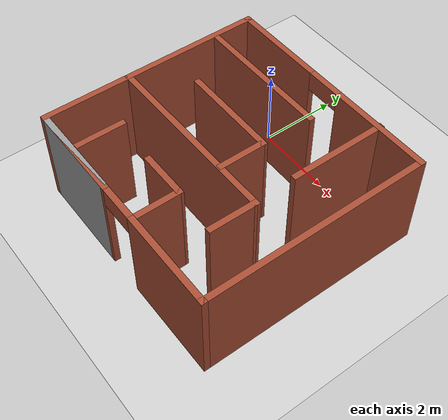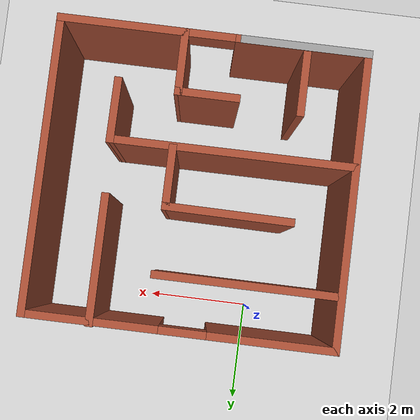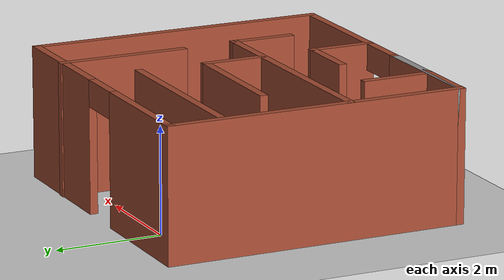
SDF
<sdf version="1.7">
 <world name="default">
  <light name="sun" type="directional">
   <pose>0 0 10 0 -0 0</pose>
   <diffuse>0.8 0.8 0.8 1</diffuse>
   <specular>0.2 0.2 0.2 1</specular>
   <attenuation>
    <range>1000</range>
    <constant>0.9</constant>
    <linear>0.01</linear>
    <quadratic>0.001</quadratic>
   </attenuation>
   <direction>-0.5 0.1 -0.9</direction>
   <spot><inner_angle>0</inner_angle><outer_angle>0</outer_angle><falloff>0</falloff></spot>
  </light>
  <model name="ground_plane">
   <static>1</static>
   <link name="link">
    <collision name="collision">
     <geometry><plane><normal>0 0 1</normal><size>100 100</size></plane></geometry>
     <surface><friction><ode><mu>100</mu><mu2>50</mu2></ode></friction></surface>
    </collision>
    <visual name="visual">
     <cast_shadows>0</cast_shadows>
     <geometry><plane><normal>0 0 1</normal><size>100 100</size></plane></geometry>
     <material>
      <script><uri>file://media/materials/scripts/gazebo.material</uri><name>Gazebo/Grey</name></script>
     </material>
    </visual>
   </link>
  </model>
  <gravity>0 0 -9.8</gravity>
  <magnetic_field>6e-06 2.3e-05 -4.2e-05</magnetic_field>
  <atmosphere type="adiabatic"/>
  <physics type="ode">
   <max_step_size>0.001</max_step_size>
   <real_time_factor>1</real_time_factor>
   <real_time_update_rate>1000</real_time_update_rate>
  </physics>
  <scene><ambient>0.4 0.4 0.4 1</ambient><background>0.7 0.7 0.7 1</background><shadows>1</shadows></scene>
  <audio><device>default</device></audio>
  <spherical_coordinates>
   <surface_model>EARTH_WGS84</surface_model>
   <latitude_deg>0</latitude_deg>
   <longitude_deg>0</longitude_deg>
   <elevation>0</elevation>
   <heading_deg>0</heading_deg>
  </spherical_coordinates>
  <model name="maze">
   <pose>1.3042 -2.2334 0 0 -0 0</pose>
   <link name="Wall_0">
    <collision name="Wall_0_Collision">
     <geometry><box><size>2.5 0.15 2.5</size></box></geometry>
     <pose>0 0 1.25 0 -0 0</pose>
    </collision>
    <visual name="Wall_0_Visual">
     <pose>0 0 1.25 0 -0 0</pose>
     <geometry><box><size>2.5 0.15 2.5</size></box></geometry>
     <material>
      <script><uri>file://media/materials/scripts/gazebo.material</uri><name>Gazebo/Grey</name></script>
      <ambient>1 1 1 1</ambient>
     </material>
     <meta><layer>0</layer></meta>
    </visual>
    <pose>-1.75 -2.81087 0 0 -0 3.14159</pose>
   </link>
   <link name="Wall_1">
    <collision name="Wall_1_Collision">
     <geometry><box><size>5.75 0.15 2.5</size></box></geometry>
     <pose>0 0 1.25 0 -0 0</pose>
    </collision>
    <visual name="Wall_1_Visual">
     <pose>0 0 1.25 0 -0 0</pose>
     <geometry><box><size>5.75 0.15 2.5</size></box></geometry>
     <material>
      <script><uri>file://media/materials/scripts/gazebo.material</uri><name>Gazebo/Bricks</name></script>
      <ambient>1 1 1 1</ambient>
     </material>
     <meta><layer>0</layer></meta>
    </visual>
    <pose>-2.925 -0.010872 0 0 -0 1.5708</pose>
   </link>
   <link name="Wall_10">
    <collision name="Wall_10_Collision">
     <geometry><box><size>4.77014 0.15 2.5</size></box></geometry>
     <pose>0 0 1.25 0 -0 0</pose>
    </collision>
    <visual name="Wall_10_Visual">
     <pose>0 0 1.25 0 -0 0</pose>
     <geometry><box><size>4.77014 0.15 2.5</size></box></geometry>
     <material>
      <script><uri>file://media/materials/scripts/gazebo.material</uri><name>Gazebo/Bricks</name></script>
      <ambient>1 1 1 1</ambient>
     </material>
     <meta><layer>0</layer></meta>
    </visual>
    <pose>-0.602166 -0.636701 0 0 -0 -3.13806</pose>
   </link>
   <link name="Wall_12">
    <collision name="Wall_12_Collision">
     <geometry><box><size>1.25 0.15 2.5</size></box></geometry>
     <pose>0 0 1.25 0 -0 0</pose>
    </collision>
    <visual name="Wall_12_Visual">
     <pose>0 0 1.25 0 -0 0</pose>
     <geometry><box><size>1.25 0.15 2.5</size></box></geometry>
     <material>
      <script><uri>file://media/materials/scripts/gazebo.material</uri><name>Gazebo/Bricks</name></script>
      <ambient>1 1 1 1</ambient>
     </material>
     <meta><layer>0</layer></meta>
    </visual>
    <pose>0.52119 -0.048379 0 0 -0 1.5708</pose>
   </link>
   <link name="Wall_15">
    <collision name="Wall_15_Collision">
     <geometry><box><size>3.5 0.15 2.5</size></box></geometry>
     <pose>0 0 1.25 0 -0 0</pose>
    </collision>
    <visual name="Wall_15_Visual">
     <pose>0 0 1.25 0 -0 0</pose>
     <geometry><box><size>3.5 0.15 2.5</size></box></geometry>
     <material>
      <script><uri>file://media/materials/scripts/gazebo.material</uri><name>Gazebo/Bricks</name></script>
      <ambient>1 1 1 1</ambient>
     </material>
     <meta><layer>0</layer></meta>
    </visual>
    <pose>-1.11358 1.78508 0 0 -0 3.14159</pose>
   </link>
   <link name="Wall_17">
    <collision name="Wall_17_Collision">
     <geometry><box><size>2.50333 0.15 2.5</size></box></geometry>
     <pose>0 0 1.25 0 -0 0</pose>
    </collision>
    <visual name="Wall_17_Visual">
     <pose>0 0 1.25 0 -0 0</pose>
     <geometry><box><size>2.50333 0.15 2.5</size></box></geometry>
     <material>
      <script><uri>file://media/materials/scripts/gazebo.material</uri><name>Gazebo/Bricks</name></script>
      <ambient>1 1 1 1</ambient>
     </material>
     <meta><layer>0</layer></meta>
    </visual>
    <pose>-0.655454 0.509773 0 0 -0 -0.006928</pose>
   </link>
   <link name="Wall_19">
    <collision name="Wall_19_Collision">
     <geometry><box><size>1.25 0.15 2.5</size></box></geometry>
     <pose>0 0 1.25 0 -0 0</pose>
    </collision>
    <visual name="Wall_19_Visual">
     <pose>0 0 1.25 0 -0 0</pose>
     <geometry><box><size>1.25 0.15 2.5</size></box></geometry>
     <material>
      <script><uri>file://media/materials/scripts/gazebo.material</uri><name>Gazebo/Bricks</name></script>
      <ambient>1 1 1 1</ambient>
     </material>
     <meta><layer>0</layer></meta>
    </visual>
    <pose>-1.77561 -2.10533 0 0 -0 -1.5708</pose>
   </link>
   <link name="Wall_2">
    <pose>-0 2.78913 0 0 -0 0</pose>
    <visual name="Wall_2_Visual_0">
     <pose>-1.76108 0 1.25 0 -0 0</pose>
     <geometry><box><size>2.47784 0.15 2.5</size></box></geometry>
     <material>
      <script><uri>file://media/materials/scripts/gazebo.material</uri><name>Gazebo/Bricks</name></script>
      <ambient>1 1 1 1</ambient>
     </material>
     <meta><layer>0</layer></meta>
    </visual>
    <collision name="Wall_2_Collision_0">
     <geometry><box><size>2.47784 0.15 2.5</size></box></geometry>
     <pose>-1.76108 0 1.25 0 -0 0</pose>
    </collision>
    <visual name="Wall_2_Visual_1">
     <pose>1.68892 0 1.25 0 -0 0</pose>
     <geometry><box><size>2.62216 0.15 2.5</size></box></geometry>
     <material>
      <script><uri>file://media/materials/scripts/gazebo.material</uri><name>Gazebo/Bricks</name></script>
      <ambient>1 1 1 1</ambient>
     </material>
     <meta><layer>0</layer></meta>
    </visual>
    <collision name="Wall_2_Collision_1">
     <geometry><box><size>2.62216 0.15 2.5</size></box></geometry>
     <pose>1.68892 0 1.25 0 -0 0</pose>
    </collision>
    <visual name="Wall_2_Visual_2">
     <pose>-0.072161 0 2.25 0 -0 0</pose>
     <geometry><box><size>0.9 0.15 0.5</size></box></geometry>
     <material>
      <script><uri>file://media/materials/scripts/gazebo.material</uri><name>Gazebo/Bricks</name></script>
      <ambient>1 1 1 1</ambient>
     </material>
     <meta><layer>0</layer></meta>
    </visual>
    <collision name="Wall_2_Collision_2">
     <geometry><box><size>0.9 0.15 0.5</size></box></geometry>
     <pose>-0.072161 0 2.25 0 -0 0</pose>
    </collision>
   </link>
   <link name="Wall_21">
    <collision name="Wall_21_Collision">
     <geometry><box><size>1.25 0.15 2.5</size></box></geometry>
     <pose>0 0 1.25 0 -0 0</pose>
    </collision>
    <visual name="Wall_21_Visual">
     <pose>0 0 1.25 0 -0 0</pose>
     <geometry><box><size>1.25 0.15 2.5</size></box></geometry>
     <material>
      <script><uri>file://media/materials/scripts/gazebo.material</uri><name>Gazebo/Bricks</name></script>
      <ambient>1 1 1 1</ambient>
     </material>
     <meta><layer>0</layer></meta>
    </visual>
    <pose>0.001314 -1.67601 0 0 -0 0</pose>
   </link>
   <link name="Wall_23">
    <collision name="Wall_23_Collision">
     <geometry><box><size>1.27638 0.15 2.5</size></box></geometry>
     <pose>0 0 1.25 0 -0 0</pose>
    </collision>
    <visual name="Wall_23_Visual">
     <pose>0 0 1.25 0 -0 0</pose>
     <geometry><box><size>1.27638 0.15 2.5</size></box></geometry>
     <material>
      <script><uri>file://media/materials/scripts/gazebo.material</uri><name>Gazebo/Bricks</name></script>
      <ambient>1 1 1 1</ambient>
     </material>
     <meta><layer>0</layer></meta>
    </visual>
    <pose>0.554437 -2.23919 0 0 -0 1.57634</pose>
   </link>
   <link name="Wall_3">
    <collision name="Wall_3_Collision">
     <geometry><box><size>5.75 0.15 2.5</size></box></geometry>
     <pose>0 0 1.25 0 -0 0</pose>
    </collision>
    <visual name="Wall_3_Visual">
     <pose>0 0 1.25 0 -0 0</pose>
     <geometry><box><size>5.75 0.15 2.5</size></box></geometry>
     <material>
      <script><uri>file://media/materials/scripts/gazebo.material</uri><name>Gazebo/Bricks</name></script>
      <ambient>1 1 1 1</ambient>
     </material>
     <meta><layer>0</layer></meta>
    </visual>
    <pose>2.925 -0.010872 0 0 -0 -1.5708</pose>
   </link>
   <link name="Wall_4">
    <pose>-0 -2.81087 0 0 -0 3.14159</pose>
    <visual name="Wall_4_Visual_0">
     <pose>-1.74921 0 1.25 0 -0 0</pose>
     <geometry><box><size>2.50158 0.15 2.5</size></box></geometry>
     <material>
      <script><uri>file://media/materials/scripts/gazebo.material</uri><name>Gazebo/Bricks</name></script>
      <ambient>1 1 1 1</ambient>
     </material>
     <meta><layer>0</layer></meta>
    </visual>
    <collision name="Wall_4_Collision_0">
     <geometry><box><size>2.50158 0.15 2.5</size></box></geometry>
     <pose>-1.74921 0 1.25 0 -0 0</pose>
    </collision>
    <visual name="Wall_4_Visual_1">
     <pose>1.70079 0 1.25 0 -0 0</pose>
     <geometry><box><size>2.59842 0.15 2.5</size></box></geometry>
     <material>
      <script><uri>file://media/materials/scripts/gazebo.material</uri><name>Gazebo/Bricks</name></script>
      <ambient>1 1 1 1</ambient>
     </material>
     <meta><layer>0</layer></meta>
    </visual>
    <collision name="Wall_4_Collision_1">
     <geometry><box><size>2.59842 0.15 2.5</size></box></geometry>
     <pose>1.70079 0 1.25 0 -0 0</pose>
    </collision>
    <visual name="Wall_4_Visual_2">
     <pose>-0.048423 0 2.25 0 -0 0</pose>
     <geometry><box><size>0.9 0.15 0.5</size></box></geometry>
     <material>
      <script><uri>file://media/materials/scripts/gazebo.material</uri><name>Gazebo/Bricks</name></script>
      <ambient>1 1 1 1</ambient>
     </material>
     <meta><layer>0</layer></meta>
    </visual>
    <collision name="Wall_4_Collision_2">
     <geometry><box><size>0.9 0.15 0.5</size></box></geometry>
     <pose>-0.048423 0 2.25 0 -0 0</pose>
    </collision>
   </link>
   <link name="Wall_7">
    <collision name="Wall_7_Collision">
     <geometry><box><size>2.5 0.15 2.5</size></box></geometry>
     <pose>0 0 1.25 0 -0 0</pose>
    </collision>
    <visual name="Wall_7_Visual">
     <pose>0 0 1.25 0 -0 0</pose>
     <geometry><box><size>2.5 0.15 2.5</size></box></geometry>
     <material>
      <script><uri>file://media/materials/scripts/gazebo.material</uri><name>Gazebo/Bricks</name></script>
      <ambient>1 1 1 1</ambient>
     </material>
     <meta><layer>0</layer></meta>
    </visual>
    <pose>1.65761 1.63587 0 0 -0 -1.5708</pose>
   </link>
   <link name="Wall_9">
    <collision name="Wall_9_Collision">
     <geometry><box><size>1.25666 0.15 2.5</size></box></geometry>
     <pose>0 0 1.25 0 -0 0</pose>
    </collision>
    <visual name="Wall_9_Visual">
     <pose>0 0 1.25 0 -0 0</pose>
     <geometry><box><size>1.25666 0.15 2.5</size></box></geometry>
     <material>
      <script><uri>file://media/materials/scripts/gazebo.material</uri><name>Gazebo/Bricks</name></script>
      <ambient>1 1 1 1</ambient>
     </material>
     <meta><layer>0</layer></meta>
    </visual>
    <pose>1.70286 -1.18167 0 0 -0 1.56171</pose>
   </link>
   <static>1</static>
  </model>
 </world>
</sdf>
